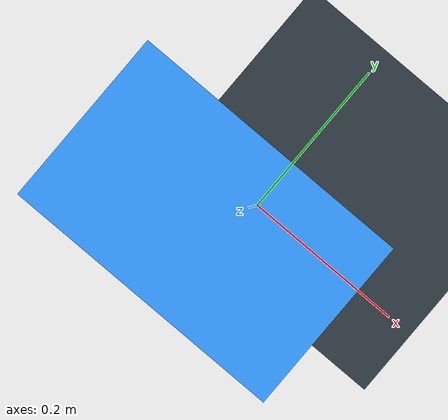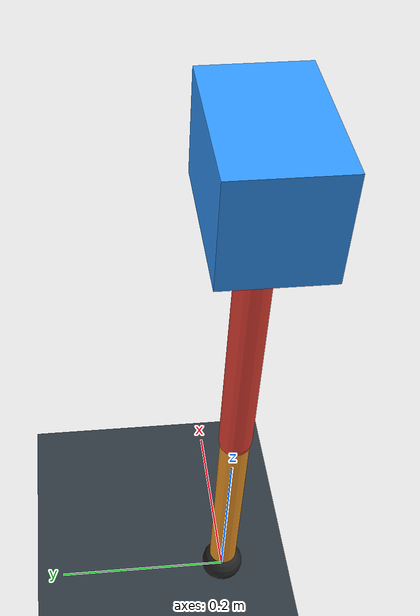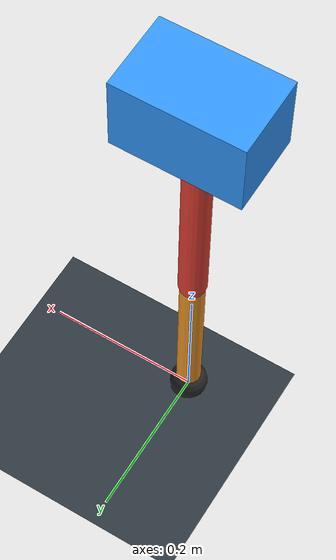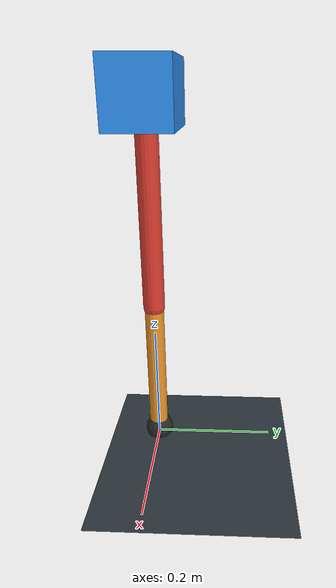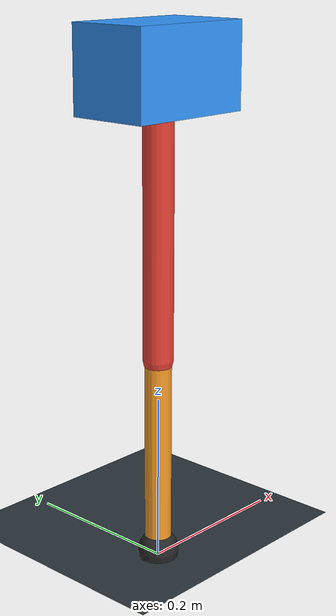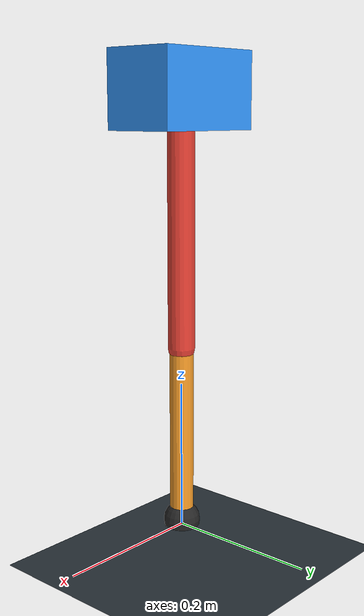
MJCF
<mujoco model="single_axis_two_bar">
  <compiler angle="radian" inertiafromgeom="true"/>
  <option timestep="0.001" integrator="implicitfast" gravity="0 0 -9.81"/>
  <default>
    <joint damping="0.08"/>
    <geom friction="1.2 0.01 0.0001" condim="3"/>
  </default>
  <worldbody>
    <geom name="floor" type="plane" size="5 5 0.1" rgba="0.18 0.22 0.25 1"/>
    <body name="carriage" pos="0 0 0.5853711287899248">
      <joint name="pole_slide" type="slide" axis="0 0 1"/>
      <geom name="payload" type="box" size="0.08 0.05 0.05" mass="2.916120522317837" rgba="0.2 0.6 1 1"/>
      <body name="thigh" pos="0 0 0">
        <joint name="hip" type="hinge" axis="0 1 0"/>
        <geom name="thigh_link" type="capsule" fromto="0 0 0 0 0 -0.3349348936749114" size="0.018" mass="0.23864553751751547" rgba="0.9 0.25 0.2 1"/>
        <body name="shank" pos="0 0 -0.3349348936749114">
          <joint name="knee" type="hinge" axis="0 1 0"/>
          <geom name="shank_link" type="capsule" fromto="0 0 0 0 0 -0.24276730095387702" size="0.016" mass="0.17297490981649286" rgba="0.95 0.6 0.15 1"/>
          <geom name="foot" type="sphere" pos="0 0 -0.24276730095387702" size="0.025" mass="0.03" rgba="0.15 0.15 0.15 1"/>
          <site name="toe" pos="0 0 -0.24276730095387702" size="0.008"/>
        </body>
      </body>
    </body>
  </worldbody>
  <actuator>
    <motor name="hip_motor" joint="hip" ctrlrange="-18.74677375932977 18.74677375932977"/>
    <motor name="knee_motor" joint="knee" ctrlrange="-46.66283798213514 46.66283798213514"/>
  </actuator>
</mujoco>
